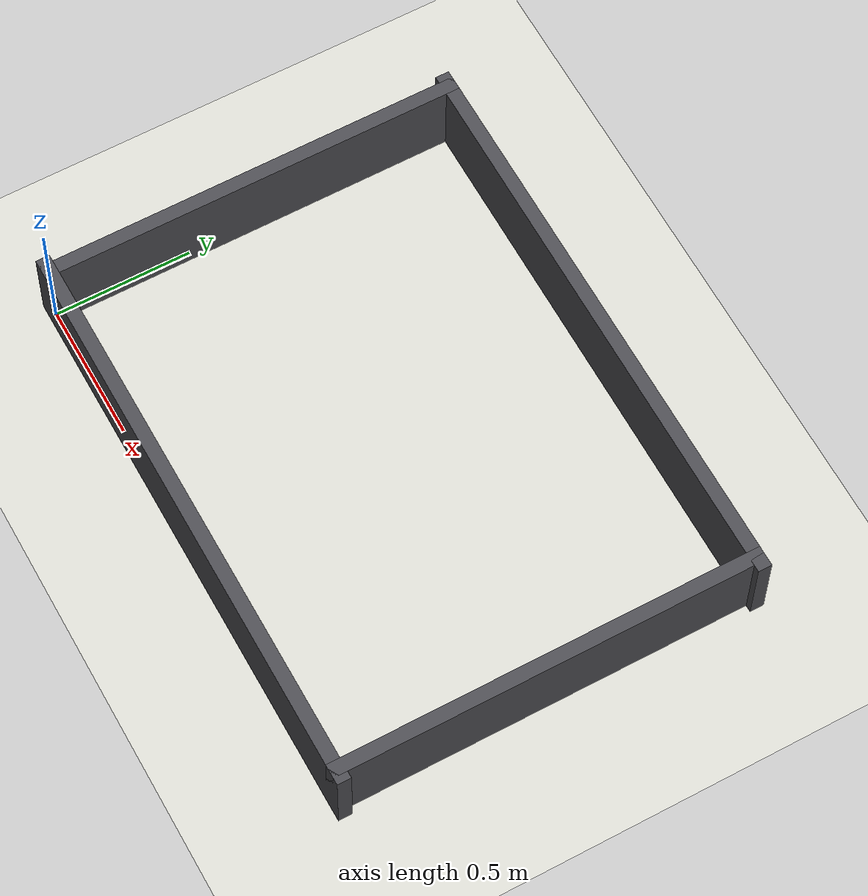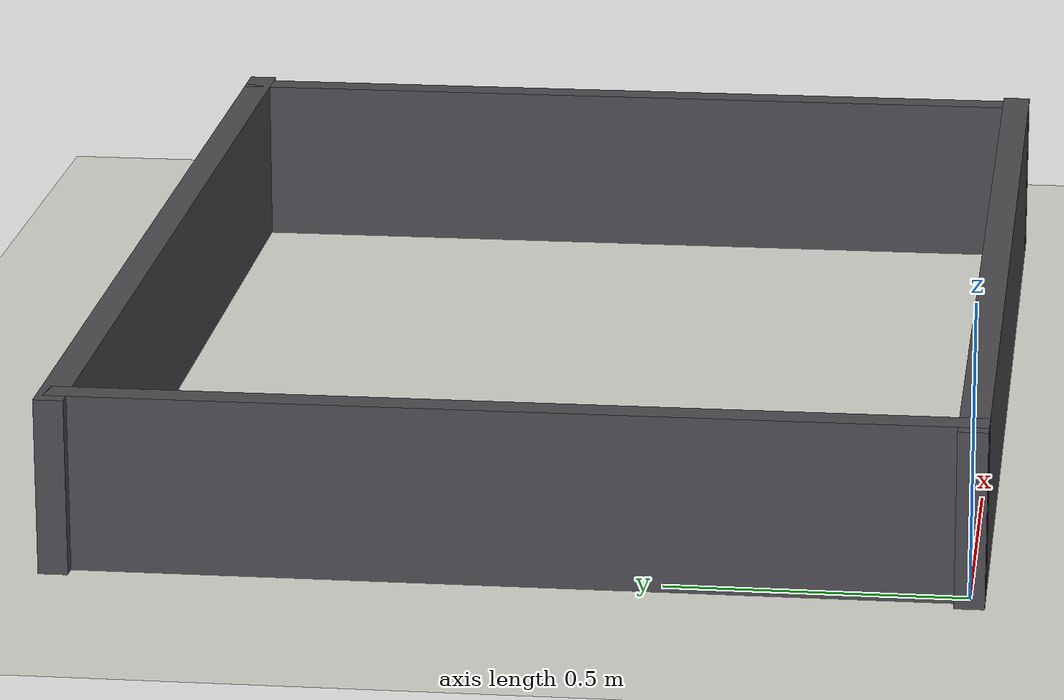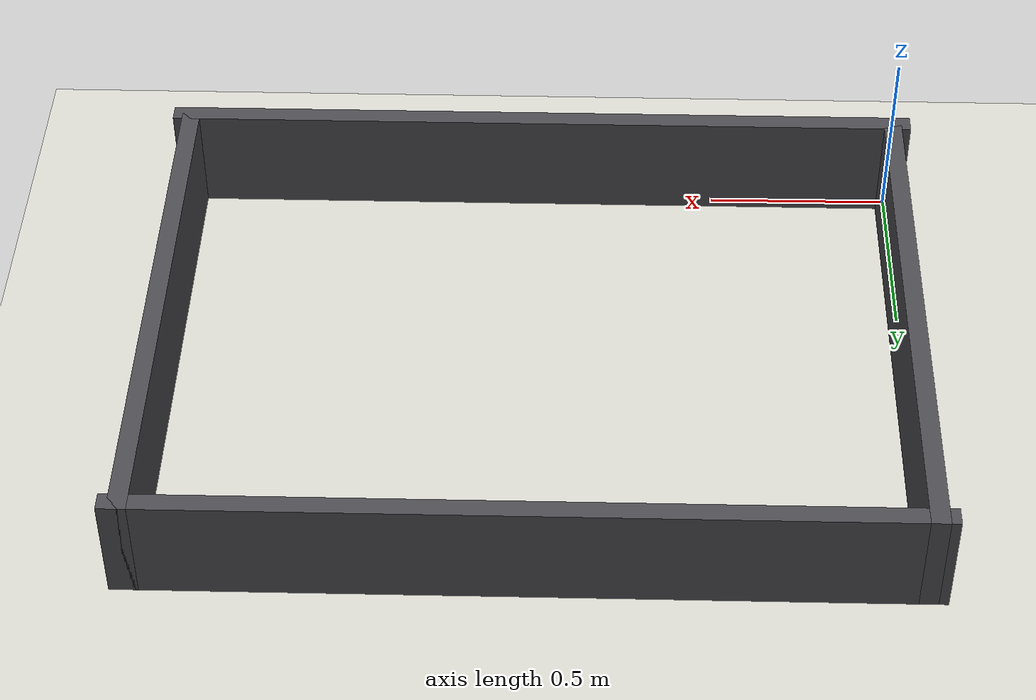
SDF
<?xml version="1.0" encoding="ASCII"?>
<sdf version="1.7">
  <world name="warehouse">
    <physics type="ode">
      <max_step_size>0.003</max_step_size>
      <real_time_factor>1.0</real_time_factor>
    </physics>
    <plugin name="ignition::gazebo::systems::Physics" filename="libignition-gazebo-physics-system.so"/>
    <plugin name="ignition::gazebo::systems::UserCommands" filename="libignition-gazebo-user-commands-system.so"/>
    <plugin name="ignition::gazebo::systems::SceneBroadcaster" filename="libignition-gazebo-scene-broadcaster-system.so"/>

    <scene>
      <ambient>1 1 1 1</ambient>
      <background>0.3 0.7 0.9 1</background>
      <shadows>0</shadows>
      <grid>true</grid>
    </scene>

    <model name="ground_plane">
      <static>true</static>
      <link name="link">
        <collision name="collision">
          <geometry>
            <plane>
              <normal>0 0 1</normal>
              <size>4 3</size>
            </plane>
          </geometry>
        </collision>
        <visual name="visual">
          <geometry>
            <plane>
              <normal>0 0 1</normal>
              <size>4 3</size>
            </plane>
          </geometry>
          <material>
            <ambient>0.85 0.85 0.82 1</ambient>
            <diffuse>0.85 0.85 0.82 1</diffuse>
          </material>
        </visual>
      </link>
    </model>

    <model name="south_wall">
      <static>true</static>
      <pose>1.0 0.0 0.15 0 0 0</pose>
      <link name="link">
        <collision name="collision">
          <geometry><box><size>2.1 0.05 0.3</size></box></geometry>
        </collision>
        <visual name="visual">
          <geometry><box><size>2.1 0.05 0.3</size></box></geometry>
          <material><ambient>0.3 0.3 0.32 1</ambient><diffuse>0.3 0.3 0.32 1</diffuse></material>
        </visual>
      </link>
    </model>

    <model name="north_wall">
      <static>true</static>
      <pose>1.0 1.5 0.15 0 0 0</pose>
      <link name="link">
        <collision name="collision">
          <geometry><box><size>2.1 0.05 0.3</size></box></geometry>
        </collision>
        <visual name="visual">
          <geometry><box><size>2.1 0.05 0.3</size></box></geometry>
          <material><ambient>0.3 0.3 0.32 1</ambient><diffuse>0.3 0.3 0.32 1</diffuse></material>
        </visual>
      </link>
    </model>

    <model name="west_wall">
      <static>true</static>
      <pose>0.0 0.75 0.15 0 0 0</pose>
      <link name="link">
        <collision name="collision">
          <geometry><box><size>0.05 1.55 0.3</size></box></geometry>
        </collision>
        <visual name="visual">
          <geometry><box><size>0.05 1.55 0.3</size></box></geometry>
          <material><ambient>0.3 0.3 0.32 1</ambient><diffuse>0.3 0.3 0.32 1</diffuse></material>
        </visual>
      </link>
    </model>

    <model name="east_wall">
      <static>true</static>
      <pose>2.0 0.75 0.15 0 0 0</pose>
      <link name="link">
        <collision name="collision">
          <geometry><box><size>0.05 1.55 0.3</size></box></geometry>
        </collision>
        <visual name="visual">
          <geometry><box><size>0.05 1.55 0.3</size></box></geometry>
          <material><ambient>0.3 0.3 0.32 1</ambient><diffuse>0.3 0.3 0.32 1</diffuse></material>
        </visual>
      </link>
    </model>
  </world>
</sdf>
